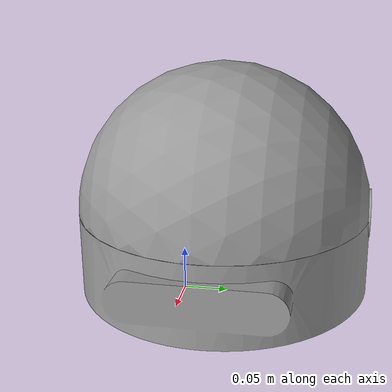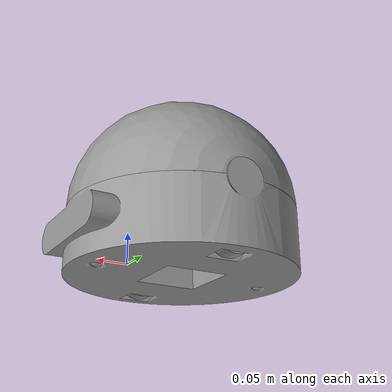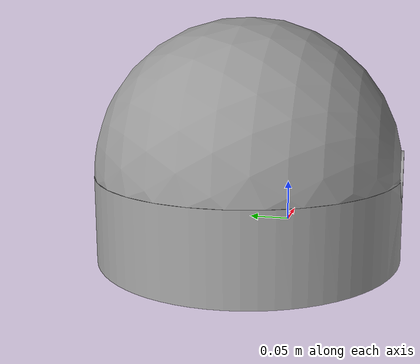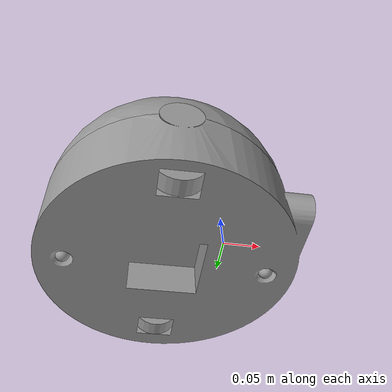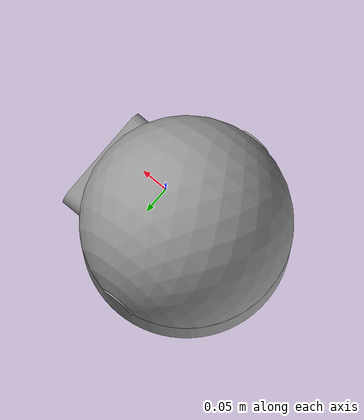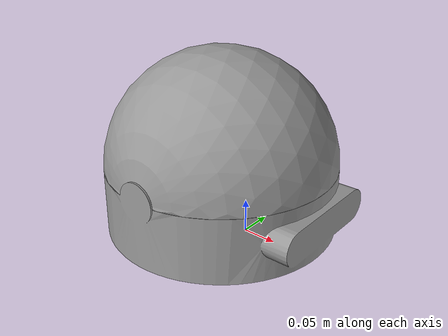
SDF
<?xml version='1.0'?>
<sdf version='1.6'>
  <model name='restaurantrobot'>
    <link name='link_0'>
      <pose frame=''>-0.075 0.035 -0.02 0 -0 0</pose>
      <inertial>
        <mass>1</mass>
        <inertia>
          <ixx>0.145833</ixx>
          <ixy>0</ixy>
          <ixz>0</ixz>
          <iyy>0.145833</iyy>
          <iyz>0</iyz>
          <izz>0.125</izz>
        </inertia>
        <pose frame=''>0 0 0 0 -0 0</pose>
      </inertial>
      <self_collide>0</self_collide>
      <kinematic>0</kinematic>
      <gravity>1</gravity>
      <visual name='visual'>
        <pose frame=''>0 0 0 0 -0 0</pose>
        <geometry>
          <mesh>
            <uri>/home/robond/project1/model/robot/restaurantrobot/mesh/body01.dae</uri>
          </mesh>
        </geometry>
        <material>
          <lighting>1</lighting>
          <script>
            <uri>file://media/materials/scripts/gazebo.material</uri>
            <name>Gazebo/Grey</name>
          </script>
          <shader type='pixel'>
            <normal_map>__default__</normal_map>
          </shader>
          <ambient>0.4 0.4 0.4 1</ambient>
          <diffuse>0.7 0.7 0.7 1</diffuse>
          <specular>1 1 1 0</specular>
          <emissive>0 0 0 1</emissive>
        </material>
        <transparency>0</transparency>
        <cast_shadows>1</cast_shadows>
      </visual>
      <collision name='collision'>
        <laser_retro>0</laser_retro>
        <max_contacts>10</max_contacts>
        <pose frame=''>0 0 0.05 0 -0 0</pose>
        <geometry>
          <cylinder>
            <radius>0.18</radius>
            <length>0.1</length>
          </cylinder>
        </geometry>
        <surface>
          <friction>
            <ode>
              <mu>1</mu>
              <mu2>1</mu2>
              <fdir1>0 0 0</fdir1>
              <slip1>0</slip1>
              <slip2>0</slip2>
            </ode>
            <torsional>
              <coefficient>1</coefficient>
              <patch_radius>0</patch_radius>
              <surface_radius>0</surface_radius>
              <use_patch_radius>1</use_patch_radius>
              <ode>
                <slip>0</slip>
              </ode>
            </torsional>
          </friction>
          <bounce>
            <restitution_coefficient>0</restitution_coefficient>
            <threshold>1e+06</threshold>
          </bounce>
          <contact>
            <collide_without_contact>0</collide_without_contact>
            <collide_without_contact_bitmask>1</collide_without_contact_bitmask>
            <collide_bitmask>1</collide_bitmask>
            <ode>
              <soft_cfm>0</soft_cfm>
              <soft_erp>0.2</soft_erp>
              <kp>1e+13</kp>
              <kd>1</kd>
              <max_vel>0.01</max_vel>
              <min_depth>0</min_depth>
            </ode>
            <bullet>
              <split_impulse>1</split_impulse>
              <split_impulse_penetration_threshold>-0.01</split_impulse_penetration_threshold>
              <soft_cfm>0</soft_cfm>
              <soft_erp>0.2</soft_erp>
              <kp>1e+13</kp>
              <kd>1</kd>
            </bullet>
          </contact>
        </surface>
      </collision>
    </link>
    <link name='link_1'>
      <pose frame=''>-0.075 -0.105 0.012 -1.5708 0 0</pose>
      <inertial>
        <mass>1.23801</mass>
        <inertia>
          <ixx>0.00040938</ixx>
          <ixy>0</ixy>
          <ixz>0</ixz>
          <iyy>0.00040938</iyy>
          <iyz>0</iyz>
          <izz>0.00068979</izz>
        </inertia>
        <pose frame=''>0 0 0 0 -0 0</pose>
      </inertial>
      <self_collide>0</self_collide>
      <kinematic>0</kinematic>
      <gravity>1</gravity>
      <visual name='visual'>
        <pose frame=''>0 0 0 0 -0 0</pose>
        <geometry>
          <cylinder>
            <radius>0.0333821</radius>
            <length>0.025</length>
          </cylinder>
        </geometry>
        <material>
          <lighting>1</lighting>
          <script>
            <uri>file://media/materials/scripts/gazebo.material</uri>
            <name>Gazebo/Grey</name>
          </script>
          <shader type='pixel'>
            <normal_map>__default__</normal_map>
          </shader>
          <ambient>0.3 0.3 0.3 1</ambient>
          <diffuse>0.7 0.7 0.7 1</diffuse>
          <specular>0.01 0.01 0.01 1</specular>
          <emissive>0 0 0 1</emissive>
        </material>
        <transparency>0</transparency>
        <cast_shadows>1</cast_shadows>
      </visual>
      <collision name='collision'>
        <laser_retro>0</laser_retro>
        <max_contacts>10</max_contacts>
        <pose frame=''>0 0 0 0 -0 0</pose>
        <geometry>
          <cylinder>
            <radius>0.034</radius>
            <length>0.025</length>
          </cylinder>
        </geometry>
        <surface>
          <friction>
            <ode>
              <mu>1</mu>
              <mu2>1</mu2>
              <fdir1>0 0 0</fdir1>
              <slip1>0</slip1>
              <slip2>0</slip2>
            </ode>
            <torsional>
              <coefficient>1</coefficient>
              <patch_radius>0</patch_radius>
              <surface_radius>0</surface_radius>
              <use_patch_radius>1</use_patch_radius>
              <ode>
                <slip>0</slip>
              </ode>
            </torsional>
          </friction>
          <bounce>
            <restitution_coefficient>0</restitution_coefficient>
            <threshold>1e+06</threshold>
          </bounce>
          <contact>
            <collide_without_contact>0</collide_without_contact>
            <collide_without_contact_bitmask>1</collide_without_contact_bitmask>
            <collide_bitmask>1</collide_bitmask>
            <ode>
              <soft_cfm>0</soft_cfm>
              <soft_erp>0.2</soft_erp>
              <kp>1e+13</kp>
              <kd>1</kd>
              <max_vel>0.01</max_vel>
              <min_depth>0</min_depth>
            </ode>
            <bullet>
              <split_impulse>1</split_impulse>
              <split_impulse_penetration_threshold>-0.01</split_impulse_penetration_threshold>
              <soft_cfm>0</soft_cfm>
              <soft_erp>0.2</soft_erp>
              <kp>1e+13</kp>
              <kd>1</kd>
            </bullet>
          </contact>
        </surface>
      </collision>
    </link>
    <link name='link_1_0'>
      <pose frame=''>-0.075 0.035 0.17 0 -0 0</pose>
      <inertial>
        <mass>1</mass>
        <inertia>
          <ixx>0.145833</ixx>
          <ixy>0</ixy>
          <ixz>0</ixz>
          <iyy>0.145833</iyy>
          <iyz>0</iyz>
          <izz>0.125</izz>
        </inertia>
        <pose frame=''>0 0 0 0 -0 0</pose>
      </inertial>
      <self_collide>0</self_collide>
      <kinematic>0</kinematic>
      <gravity>1</gravity>
      <visual name='visual'>
        <pose frame=''>0 0 -0.09 0 -0 0</pose>
        <geometry>
          <mesh>
            <uri>/home/robond/project1/model/robot/restaurantrobot/mesh/cover.dae</uri>
          </mesh>
        </geometry>
        <material>
          <lighting>1</lighting>
          <script>
            <uri>file://media/materials/scripts/gazebo.material</uri>
            <name>Gazebo/Grey</name>
          </script>
          <shader type='pixel'>
            <normal_map>__default__</normal_map>
          </shader>
          <ambient>0.3 0.3 0.3 1</ambient>
          <diffuse>0.7 0.7 0.7 1</diffuse>
          <specular>0.01 0.01 0.01 1</specular>
          <emissive>0 0 0 1</emissive>
        </material>
        <transparency>0</transparency>
        <cast_shadows>1</cast_shadows>
      </visual>
      <collision name='collision'>
        <laser_retro>0</laser_retro>
        <max_contacts>10</max_contacts>
        <pose frame=''>0 0 0 0 -0 0</pose>
        <geometry>
          <cylinder>
            <radius>0.18</radius>
            <length>0.18</length>
          </cylinder>
        </geometry>
        <surface>
          <friction>
            <ode>
              <mu>1</mu>
              <mu2>1</mu2>
              <fdir1>0 0 0</fdir1>
              <slip1>0</slip1>
              <slip2>0</slip2>
            </ode>
            <torsional>
              <coefficient>1</coefficient>
              <patch_radius>0</patch_radius>
              <surface_radius>0</surface_radius>
              <use_patch_radius>1</use_patch_radius>
              <ode>
                <slip>0</slip>
              </ode>
            </torsional>
          </friction>
          <bounce>
            <restitution_coefficient>0</restitution_coefficient>
            <threshold>1e+06</threshold>
          </bounce>
          <contact>
            <collide_without_contact>0</collide_without_contact>
            <collide_without_contact_bitmask>1</collide_without_contact_bitmask>
            <collide_bitmask>1</collide_bitmask>
            <ode>
              <soft_cfm>0</soft_cfm>
              <soft_erp>0.2</soft_erp>
              <kp>1e+13</kp>
              <kd>1</kd>
              <max_vel>0.01</max_vel>
              <min_depth>0</min_depth>
            </ode>
            <bullet>
              <split_impulse>1</split_impulse>
              <split_impulse_penetration_threshold>-0.01</split_impulse_penetration_threshold>
              <soft_cfm>0</soft_cfm>
              <soft_erp>0.2</soft_erp>
              <kp>1e+13</kp>
              <kd>1</kd>
            </bullet>
          </contact>
        </surface>
      </collision>
    </link>
    <link name='link_1_clone'>
      <pose frame=''>-0.075 0.175 0.012 -1.5708 0 0</pose>
      <inertial>
        <mass>1.23801</mass>
        <inertia>
          <ixx>0.00040938</ixx>
          <ixy>0</ixy>
          <ixz>0</ixz>
          <iyy>0.00040938</iyy>
          <iyz>0</iyz>
          <izz>0.00068979</izz>
        </inertia>
        <pose frame=''>0 0 0 0 -0 0</pose>
      </inertial>
      <self_collide>0</self_collide>
      <kinematic>0</kinematic>
      <gravity>1</gravity>
      <visual name='visual'>
        <pose frame=''>0 0 0 0 -0 0</pose>
        <geometry>
          <cylinder>
            <radius>0.034</radius>
            <length>0.025</length>
          </cylinder>
        </geometry>
        <material>
          <lighting>1</lighting>
          <script>
            <uri>file://media/materials/scripts/gazebo.material</uri>
            <name>Gazebo/Grey</name>
          </script>
          <shader type='pixel'>
            <normal_map>__default__</normal_map>
          </shader>
          <ambient>0.3 0.3 0.3 1</ambient>
          <diffuse>0.7 0.7 0.7 1</diffuse>
          <specular>0.01 0.01 0.01 1</specular>
          <emissive>0 0 0 1</emissive>
        </material>
        <transparency>0</transparency>
        <cast_shadows>1</cast_shadows>
      </visual>
      <collision name='collision'>
        <laser_retro>0</laser_retro>
        <max_contacts>10</max_contacts>
        <pose frame=''>0 0 0 0 -0 0</pose>
        <geometry>
          <cylinder>
            <radius>0.034</radius>
            <length>0.025</length>
          </cylinder>
        </geometry>
        <surface>
          <friction>
            <ode>
              <mu>1</mu>
              <mu2>1</mu2>
              <fdir1>0 0 0</fdir1>
              <slip1>0</slip1>
              <slip2>0</slip2>
            </ode>
            <torsional>
              <coefficient>1</coefficient>
              <patch_radius>0</patch_radius>
              <surface_radius>0</surface_radius>
              <use_patch_radius>1</use_patch_radius>
              <ode>
                <slip>0</slip>
              </ode>
            </torsional>
          </friction>
          <bounce>
            <restitution_coefficient>0</restitution_coefficient>
            <threshold>1e+06</threshold>
          </bounce>
          <contact>
            <collide_without_contact>0</collide_without_contact>
            <collide_without_contact_bitmask>1</collide_without_contact_bitmask>
            <collide_bitmask>1</collide_bitmask>
            <ode>
              <soft_cfm>0</soft_cfm>
              <soft_erp>0.2</soft_erp>
              <kp>1e+13</kp>
              <kd>1</kd>
              <max_vel>0.01</max_vel>
              <min_depth>0</min_depth>
            </ode>
            <bullet>
              <split_impulse>1</split_impulse>
              <split_impulse_penetration_threshold>-0.01</split_impulse_penetration_threshold>
              <soft_cfm>0</soft_cfm>
              <soft_erp>0.2</soft_erp>
              <kp>1e+13</kp>
              <kd>1</kd>
            </bullet>
          </contact>
        </surface>
      </collision>
    </link>
    <link name='link_2'>
      <pose frame=''>0.065 0.035 -0.012 0 -0 0</pose>
      <inertial>
        <mass>1.585e-05</mass>
        <inertia>
          <ixx>0</ixx>
          <ixy>0</ixy>
          <ixz>0</ixz>
          <iyy>0</iyy>
          <iyz>0</iyz>
          <izz>0</izz>
        </inertia>
        <pose frame=''>0 0 0 0 -0 0</pose>
      </inertial>
      <self_collide>0</self_collide>
      <kinematic>0</kinematic>
      <gravity>1</gravity>
      <visual name='visual'>
        <pose frame=''>0 0 0 0 -0 0</pose>
        <geometry>
          <sphere>
            <radius>0.01</radius>
          </sphere>
        </geometry>
        <material>
          <lighting>1</lighting>
          <script>
            <uri>file://media/materials/scripts/gazebo.material</uri>
            <name>Gazebo/Grey</name>
          </script>
          <shader type='pixel'>
            <normal_map>__default__</normal_map>
          </shader>
          <ambient>0.3 0.3 0.3 1</ambient>
          <diffuse>0.7 0.7 0.7 1</diffuse>
          <specular>0.01 0.01 0.01 1</specular>
          <emissive>0 0 0 1</emissive>
        </material>
        <transparency>0</transparency>
        <cast_shadows>1</cast_shadows>
      </visual>
      <collision name='collision'>
        <laser_retro>0</laser_retro>
        <max_contacts>10</max_contacts>
        <pose frame=''>0 0 0 0 -0 0</pose>
        <geometry>
          <sphere>
            <radius>0.01</radius>
          </sphere>
        </geometry>
        <surface>
          <friction>
            <ode>
              <mu>1</mu>
              <mu2>1</mu2>
              <fdir1>0 0 0</fdir1>
              <slip1>0</slip1>
              <slip2>0</slip2>
            </ode>
            <torsional>
              <coefficient>1</coefficient>
              <patch_radius>0</patch_radius>
              <surface_radius>0</surface_radius>
              <use_patch_radius>1</use_patch_radius>
              <ode>
                <slip>0</slip>
              </ode>
            </torsional>
          </friction>
          <bounce>
            <restitution_coefficient>0</restitution_coefficient>
            <threshold>1e+06</threshold>
          </bounce>
          <contact>
            <collide_without_contact>0</collide_without_contact>
            <collide_without_contact_bitmask>1</collide_without_contact_bitmask>
            <collide_bitmask>1</collide_bitmask>
            <ode>
              <soft_cfm>0</soft_cfm>
              <soft_erp>0.2</soft_erp>
              <kp>1e+13</kp>
              <kd>1</kd>
              <max_vel>0.01</max_vel>
              <min_depth>0</min_depth>
            </ode>
            <bullet>
              <split_impulse>1</split_impulse>
              <split_impulse_penetration_threshold>-0.01</split_impulse_penetration_threshold>
              <soft_cfm>0</soft_cfm>
              <soft_erp>0.2</soft_erp>
              <kp>1e+13</kp>
              <kd>1</kd>
            </bullet>
          </contact>
        </surface>
      </collision>
    </link>
    <link name='link_2_clone'>
      <pose frame=''>-0.215 0.035 -0.012 0 -0 0</pose>
      <inertial>
        <mass>1.585e-05</mass>
        <inertia>
          <ixx>0</ixx>
          <ixy>0</ixy>
          <ixz>0</ixz>
          <iyy>0</iyy>
          <iyz>0</iyz>
          <izz>0</izz>
        </inertia>
        <pose frame=''>0 0 0 0 -0 0</pose>
      </inertial>
      <self_collide>0</self_collide>
      <kinematic>0</kinematic>
      <gravity>1</gravity>
      <visual name='visual'>
        <pose frame=''>0 0 0 0 -0 0</pose>
        <geometry>
          <sphere>
            <radius>0.01</radius>
          </sphere>
        </geometry>
        <material>
          <lighting>1</lighting>
          <script>
            <uri>file://media/materials/scripts/gazebo.material</uri>
            <name>Gazebo/Grey</name>
          </script>
          <shader type='pixel'>
            <normal_map>__default__</normal_map>
          </shader>
          <ambient>0.3 0.3 0.3 1</ambient>
          <diffuse>0.7 0.7 0.7 1</diffuse>
          <specular>0.01 0.01 0.01 1</specular>
          <emissive>0 0 0 1</emissive>
        </material>
        <transparency>0</transparency>
        <cast_shadows>1</cast_shadows>
      </visual>
      <collision name='collision'>
        <laser_retro>0</laser_retro>
        <max_contacts>10</max_contacts>
        <pose frame=''>0 0 0 0 -0 0</pose>
        <geometry>
          <sphere>
            <radius>0.01</radius>
          </sphere>
        </geometry>
        <surface>
          <friction>
            <ode>
              <mu>1</mu>
              <mu2>1</mu2>
              <fdir1>0 0 0</fdir1>
              <slip1>0</slip1>
              <slip2>0</slip2>
            </ode>
            <torsional>
              <coefficient>1</coefficient>
              <patch_radius>0</patch_radius>
              <surface_radius>0</surface_radius>
              <use_patch_radius>1</use_patch_radius>
              <ode>
                <slip>0</slip>
              </ode>
            </torsional>
          </friction>
          <bounce>
            <restitution_coefficient>0</restitution_coefficient>
            <threshold>1e+06</threshold>
          </bounce>
          <contact>
            <collide_without_contact>0</collide_without_contact>
            <collide_without_contact_bitmask>1</collide_without_contact_bitmask>
            <collide_bitmask>1</collide_bitmask>
            <ode>
              <soft_cfm>0</soft_cfm>
              <soft_erp>0.2</soft_erp>
              <kp>1e+13</kp>
              <kd>1</kd>
              <max_vel>0.01</max_vel>
              <min_depth>0</min_depth>
            </ode>
            <bullet>
              <split_impulse>1</split_impulse>
              <split_impulse_penetration_threshold>-0.01</split_impulse_penetration_threshold>
              <soft_cfm>0</soft_cfm>
              <soft_erp>0.2</soft_erp>
              <kp>1e+13</kp>
              <kd>1</kd>
            </bullet>
          </contact>
        </surface>
      </collision>
    </link>
    <joint name='link_0_JOINT_0' type='revolute'>
      <parent>link_0</parent>
      <child>link_1</child>
      <pose frame=''>0 0 0 0 -0 0</pose>
      <axis>
        <xyz>-0 -0 -1</xyz>
        <use_parent_model_frame>0</use_parent_model_frame>
        <limit>
          <lower>-1.79769e+308</lower>
          <upper>1.79769e+308</upper>
          <effort>-1</effort>
          <velocity>-1</velocity>
        </limit>
        <dynamics>
          <spring_reference>0</spring_reference>
          <spring_stiffness>0</spring_stiffness>
          <damping>0</damping>
        </dynamics>
      </axis>
      <physics>
        <ode>
          <limit>
            <cfm>0</cfm>
            <erp>0.2</erp>
          </limit>
          <suspension>
            <cfm>0</cfm>
            <erp>0.2</erp>
          </suspension>
        </ode>
      </physics>
    </joint>
    <joint name='link_0_JOINT_1' type='revolute'>
      <parent>link_0</parent>
      <child>link_1_clone</child>
      <pose frame=''>0 0 0 0 -0 0</pose>
      <axis>
        <xyz>0 0 1</xyz>
        <use_parent_model_frame>0</use_parent_model_frame>
        <limit>
          <lower>-1.79769e+308</lower>
          <upper>1.79769e+308</upper>
          <effort>-1</effort>
          <velocity>-1</velocity>
        </limit>
        <dynamics>
          <spring_reference>0</spring_reference>
          <spring_stiffness>0</spring_stiffness>
          <damping>0</damping>
        </dynamics>
      </axis>
      <physics>
        <ode>
          <limit>
            <cfm>0</cfm>
            <erp>0.2</erp>
          </limit>
          <suspension>
            <cfm>0</cfm>
            <erp>0.2</erp>
          </suspension>
        </ode>
      </physics>
    </joint>
    <joint name='link_0_JOINT_2' type='ball'>
      <parent>link_0</parent>
      <child>link_2</child>
      <pose frame=''>0 0 0 0 -0 0</pose>
      <physics>
        <ode>
          <limit>
            <cfm>0</cfm>
            <erp>0.2</erp>
          </limit>
          <suspension>
            <cfm>0</cfm>
            <erp>0.2</erp>
          </suspension>
        </ode>
      </physics>
    </joint>
    <joint name='link_0_JOINT_3' type='ball'>
      <parent>link_0</parent>
      <child>link_2_clone</child>
      <pose frame=''>0 0 0 0 -0 0</pose>
      <physics>
        <ode>
          <limit>
            <cfm>0</cfm>
            <erp>0.2</erp>
          </limit>
          <suspension>
            <cfm>0</cfm>
            <erp>0.2</erp>
          </suspension>
        </ode>
      </physics>
    </joint>
    <joint name='link_0_JOINT_4' type='revolute'>
      <parent>link_0</parent>
      <child>link_1_0</child>
      <pose frame=''>0 0 0 0 -0 0</pose>
      <axis>
        <xyz>0 1 0</xyz>
        <use_parent_model_frame>0</use_parent_model_frame>
        <limit>
          <lower>-1.79769e+308</lower>
          <upper>1.79769e+308</upper>
          <effort>-1</effort>
          <velocity>-1</velocity>
        </limit>
        <dynamics>
          <spring_reference>0</spring_reference>
          <spring_stiffness>0</spring_stiffness>
          <damping>0</damping>
        </dynamics>
      </axis>
      <physics>
        <ode>
          <limit>
            <cfm>0</cfm>
            <erp>0.2</erp>
          </limit>
          <suspension>
            <cfm>0</cfm>
            <erp>0.2</erp>
          </suspension>
        </ode>
      </physics>
    </joint>
    <static>0</static>
    <allow_auto_disable>0</allow_auto_disable>
  </model>
</sdf>
